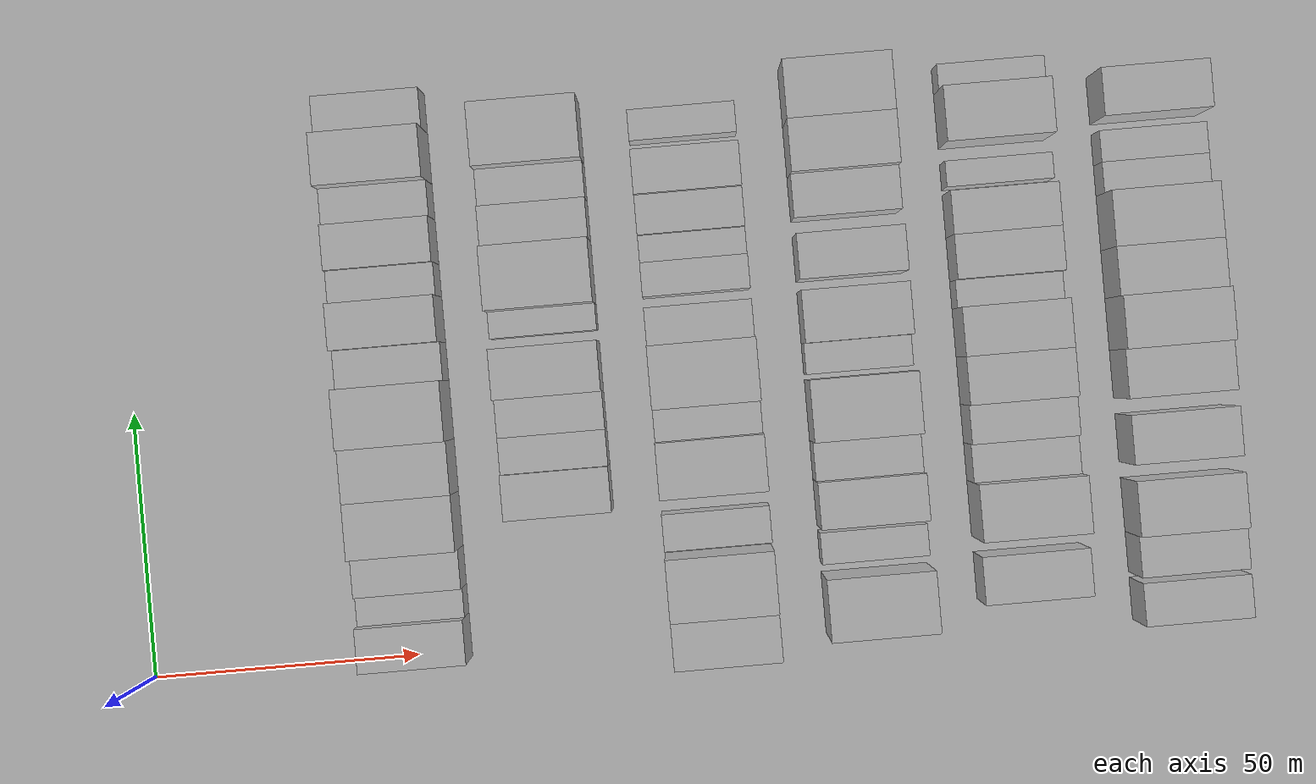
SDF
<sdf version="1.6">
 <world name="default">
  <include><name>ground_plane_1</name><uri>model://HANNAS_ground_plane</uri></include>
  <include>
   <name>ground_plane_2</name>
   <uri>model://HANNAS_ground_plane</uri>
   <pose>100 0 0  0 0 0</pose>
  </include>
  <model name="building_63">
   <static>1</static>
   <pose>50.0000 3.0512 0 0.000000 0.000000 0.000000</pose>
   <link name="link">
    <pose>0 0 9.00 0 0 0</pose>
    <collision name="collision"><geometry><box><size>20.0000 8.2839 18.0000</size></box></geometry></collision>
    <visual name="visual">
     <cast_shadows>0</cast_shadows>
     <geometry><box><size>20.0000 8.2839 18.0000</size></box></geometry>
     <material>
      <script>
       <uri>model://HANNAS_wall/materials/scripts</uri>
       <uri>model://HANNAS_wall/materials/textures</uri>
       <name>vrc/HANNAS_wall</name>
      </script>
     </material>
    </visual>
   </link>
  </model>
  <model name="building_64">
   <static>1</static>
   <pose>50.0000 9.9308 0 0.000000 0.000000 0.000000</pose>
   <link name="link">
    <pose>0 0 6.00 0 0 0</pose>
    <collision name="collision"><geometry><box><size>20.0000 5.4755 12.0000</size></box></geometry></collision>
    <visual name="visual">
     <cast_shadows>0</cast_shadows>
     <geometry><box><size>20.0000 5.4755 12.0000</size></box></geometry>
     <material>
      <script>
       <uri>model://HANNAS_wall/materials/scripts</uri>
       <uri>model://HANNAS_wall/materials/textures</uri>
       <name>vrc/HANNAS_wall</name>
      </script>
     </material>
    </visual>
   </link>
  </model>
  <model name="building_65">
   <static>1</static>
   <pose>50.0000 16.3078 0 0.000000 0.000000 0.000000</pose>
   <link name="link">
    <pose>0 0 7.50 0 0 0</pose>
    <collision name="collision"><geometry><box><size>20.0000 7.2783 15.0000</size></box></geometry></collision>
    <visual name="visual">
     <cast_shadows>0</cast_shadows>
     <geometry><box><size>20.0000 7.2783 15.0000</size></box></geometry>
     <material>
      <script>
       <uri>model://HANNAS_wall/materials/scripts</uri>
       <uri>model://HANNAS_wall/materials/textures</uri>
       <name>vrc/HANNAS_wall</name>
      </script>
     </material>
    </visual>
   </link>
  </model>
  <model name="building_66">
   <static>1</static>
   <pose>50.0000 25.1313 0 0.000000 0.000000 0.000000</pose>
   <link name="link">
    <pose>0 0 10.50 0 0 0</pose>
    <collision name="collision"><geometry><box><size>20.0000 10.3688 21.0000</size></box></geometry></collision>
    <visual name="visual">
     <cast_shadows>0</cast_shadows>
     <geometry><box><size>20.0000 10.3688 21.0000</size></box></geometry>
     <material>
      <script>
       <uri>model://HANNAS_wall/materials/scripts</uri>
       <uri>model://HANNAS_wall/materials/textures</uri>
       <name>vrc/HANNAS_wall</name>
      </script>
     </material>
    </visual>
   </link>
  </model>
  <model name="building_67">
   <static>1</static>
   <pose>50.0000 35.2658 0 0.000000 0.000000 0.000000</pose>
   <link name="link">
    <pose>0 0 10.50 0 0 0</pose>
    <collision name="collision"><geometry><box><size>20.0000 9.9002 21.0000</size></box></geometry></collision>
    <visual name="visual">
     <cast_shadows>0</cast_shadows>
     <geometry><box><size>20.0000 9.9002 21.0000</size></box></geometry>
     <material>
      <script>
       <uri>model://HANNAS_wall/materials/scripts</uri>
       <uri>model://HANNAS_wall/materials/textures</uri>
       <name>vrc/HANNAS_wall</name>
      </script>
     </material>
    </visual>
   </link>
  </model>
  <model name="building_68">
   <static>1</static>
   <pose>50.0000 45.7797 0 0.000000 0.000000 0.000000</pose>
   <link name="link">
    <pose>0 0 12.00 0 0 0</pose>
    <collision name="collision"><geometry><box><size>20.0000 11.1277 24.0000</size></box></geometry></collision>
    <visual name="visual">
     <cast_shadows>0</cast_shadows>
     <geometry><box><size>20.0000 11.1277 24.0000</size></box></geometry>
     <material>
      <script>
       <uri>model://HANNAS_wall/materials/scripts</uri>
       <uri>model://HANNAS_wall/materials/textures</uri>
       <name>vrc/HANNAS_wall</name>
      </script>
     </material>
    </visual>
   </link>
  </model>
  <model name="building_69">
   <static>1</static>
   <pose>50.0000 54.9168 0 0.000000 0.000000 0.000000</pose>
   <link name="link">
    <pose>0 0 7.50 0 0 0</pose>
    <collision name="collision"><geometry><box><size>20.0000 7.1465 15.0000</size></box></geometry></collision>
    <visual name="visual">
     <cast_shadows>0</cast_shadows>
     <geometry><box><size>20.0000 7.1465 15.0000</size></box></geometry>
     <material>
      <script>
       <uri>model://HANNAS_wall/materials/scripts</uri>
       <uri>model://HANNAS_wall/materials/textures</uri>
       <name>vrc/HANNAS_wall</name>
      </script>
     </material>
    </visual>
   </link>
  </model>
  <model name="building_70">
   <static>1</static>
   <pose>50.0000 62.8040 0 0.000000 0.000000 0.000000</pose>
   <link name="link">
    <pose>0 0 10.50 0 0 0</pose>
    <collision name="collision"><geometry><box><size>20.0000 8.6278 21.0000</size></box></geometry></collision>
    <visual name="visual">
     <cast_shadows>0</cast_shadows>
     <geometry><box><size>20.0000 8.6278 21.0000</size></box></geometry>
     <material>
      <script>
       <uri>model://HANNAS_wall/materials/scripts</uri>
       <uri>model://HANNAS_wall/materials/textures</uri>
       <name>vrc/HANNAS_wall</name>
      </script>
     </material>
    </visual>
   </link>
  </model>
  <model name="building_71">
   <static>1</static>
   <pose>50.0000 70.1985 0 0.000000 0.000000 0.000000</pose>
   <link name="link">
    <pose>0 0 7.50 0 0 0</pose>
    <collision name="collision"><geometry><box><size>20.0000 6.1613 15.0000</size></box></geometry></collision>
    <visual name="visual">
     <cast_shadows>0</cast_shadows>
     <geometry><box><size>20.0000 6.1613 15.0000</size></box></geometry>
     <material>
      <script>
       <uri>model://HANNAS_wall/materials/scripts</uri>
       <uri>model://HANNAS_wall/materials/textures</uri>
       <name>vrc/HANNAS_wall</name>
      </script>
     </material>
    </visual>
   </link>
  </model>
  <model name="building_72">
   <static>1</static>
   <pose>50.0000 77.4950 0 0.000000 0.000000 0.000000</pose>
   <link name="link">
    <pose>0 0 9.00 0 0 0</pose>
    <collision name="collision"><geometry><box><size>20.0000 8.4317 18.0000</size></box></geometry></collision>
    <visual name="visual">
     <cast_shadows>0</cast_shadows>
     <geometry><box><size>20.0000 8.4317 18.0000</size></box></geometry>
     <material>
      <script>
       <uri>model://HANNAS_wall/materials/scripts</uri>
       <uri>model://HANNAS_wall/materials/textures</uri>
       <name>vrc/HANNAS_wall</name>
      </script>
     </material>
    </visual>
   </link>
  </model>
  <model name="building_73">
   <static>1</static>
   <pose>50.0000 85.1063 0 0.000000 0.000000 0.000000</pose>
   <link name="link">
    <pose>0 0 7.50 0 0 0</pose>
    <collision name="collision"><geometry><box><size>20.0000 6.7908 15.0000</size></box></geometry></collision>
    <visual name="visual">
     <cast_shadows>0</cast_shadows>
     <geometry><box><size>20.0000 6.7908 15.0000</size></box></geometry>
     <material>
      <script>
       <uri>model://HANNAS_wall/materials/scripts</uri>
       <uri>model://HANNAS_wall/materials/textures</uri>
       <name>vrc/HANNAS_wall</name>
      </script>
     </material>
    </visual>
   </link>
  </model>
  <model name="building_74">
   <static>1</static>
   <pose>50.0000 93.3463 0 0.000000 0.000000 0.000000</pose>
   <link name="link">
    <pose>0 0 12.00 0 0 0</pose>
    <collision name="collision"><geometry><box><size>20.0000 9.6893 24.0000</size></box></geometry></collision>
    <visual name="visual">
     <cast_shadows>0</cast_shadows>
     <geometry><box><size>20.0000 9.6893 24.0000</size></box></geometry>
     <material>
      <script>
       <uri>model://HANNAS_wall/materials/scripts</uri>
       <uri>model://HANNAS_wall/materials/textures</uri>
       <name>vrc/HANNAS_wall</name>
      </script>
     </material>
    </visual>
   </link>
  </model>
  <model name="building_75">
   <static>1</static>
   <pose>50.0000 101.9193 0 0.000000 0.000000 0.000000</pose>
   <link name="link">
    <pose>0 0 7.50 0 0 0</pose>
    <collision name="collision"><geometry><box><size>20.0000 7.4566 15.0000</size></box></geometry></collision>
    <visual name="visual">
     <cast_shadows>0</cast_shadows>
     <geometry><box><size>20.0000 7.4566 15.0000</size></box></geometry>
     <material>
      <script>
       <uri>model://HANNAS_wall/materials/scripts</uri>
       <uri>model://HANNAS_wall/materials/textures</uri>
       <name>vrc/HANNAS_wall</name>
      </script>
     </material>
    </visual>
   </link>
  </model>
  <model name="building_181">
   <static>1</static>
   <pose>79.0000 28.7754 0 0.000000 0.000000 0.000000</pose>
   <link name="link">
    <pose>0 0 9.00 0 0 0</pose>
    <collision name="collision"><geometry><box><size>20.0000 8.4628 18.0000</size></box></geometry></collision>
    <visual name="visual">
     <cast_shadows>0</cast_shadows>
     <geometry><box><size>20.0000 8.4628 18.0000</size></box></geometry>
     <material>
      <script>
       <uri>model://HANNAS_wall/materials/scripts</uri>
       <uri>model://HANNAS_wall/materials/textures</uri>
       <name>vrc/HANNAS_wall</name>
      </script>
     </material>
    </visual>
   </link>
  </model>
  <model name="building_182">
   <static>1</static>
   <pose>79.0000 36.4030 0 0.000000 0.000000 0.000000</pose>
   <link name="link">
    <pose>0 0 7.50 0 0 0</pose>
    <collision name="collision"><geometry><box><size>20.0000 6.7922 15.0000</size></box></geometry></collision>
    <visual name="visual">
     <cast_shadows>0</cast_shadows>
     <geometry><box><size>20.0000 6.7922 15.0000</size></box></geometry>
     <material>
      <script>
       <uri>model://HANNAS_wall/materials/scripts</uri>
       <uri>model://HANNAS_wall/materials/textures</uri>
       <name>vrc/HANNAS_wall</name>
      </script>
     </material>
    </visual>
   </link>
  </model>
  <model name="building_183">
   <static>1</static>
   <pose>79.0000 43.3364 0 0.000000 0.000000 0.000000</pose>
   <link name="link">
    <pose>0 0 7.50 0 0 0</pose>
    <collision name="collision"><geometry><box><size>20.0000 7.0746 15.0000</size></box></geometry></collision>
    <visual name="visual">
     <cast_shadows>0</cast_shadows>
     <geometry><box><size>20.0000 7.0746 15.0000</size></box></geometry>
     <material>
      <script>
       <uri>model://HANNAS_wall/materials/scripts</uri>
       <uri>model://HANNAS_wall/materials/textures</uri>
       <name>vrc/HANNAS_wall</name>
      </script>
     </material>
    </visual>
   </link>
  </model>
  <model name="building_184">
   <static>1</static>
   <pose>79.0000 51.5589 0 0.000000 0.000000 0.000000</pose>
   <link name="link">
    <pose>0 0 10.50 0 0 0</pose>
    <collision name="collision"><geometry><box><size>20.0000 9.3705 21.0000</size></box></geometry></collision>
    <visual name="visual">
     <cast_shadows>0</cast_shadows>
     <geometry><box><size>20.0000 9.3705 21.0000</size></box></geometry>
     <material>
      <script>
       <uri>model://HANNAS_wall/materials/scripts</uri>
       <uri>model://HANNAS_wall/materials/textures</uri>
       <name>vrc/HANNAS_wall</name>
      </script>
     </material>
    </visual>
   </link>
  </model>
  <model name="building_185">
   <static>1</static>
   <pose>79.0000 60.7445 0 0.000000 0.000000 0.000000</pose>
   <link name="link">
    <pose>0 0 6.00 0 0 0</pose>
    <collision name="collision"><geometry><box><size>20.0000 5.0007 12.0000</size></box></geometry></collision>
    <visual name="visual">
     <cast_shadows>0</cast_shadows>
     <geometry><box><size>20.0000 5.0007 12.0000</size></box></geometry>
     <material>
      <script>
       <uri>model://HANNAS_wall/materials/scripts</uri>
       <uri>model://HANNAS_wall/materials/textures</uri>
       <name>vrc/HANNAS_wall</name>
      </script>
     </material>
    </visual>
   </link>
  </model>
  <model name="building_186">
   <static>1</static>
   <pose>79.0000 69.1497 0 0.000000 0.000000 0.000000</pose>
   <link name="link">
    <pose>0 0 12.00 0 0 0</pose>
    <collision name="collision"><geometry><box><size>20.0000 11.8096 24.0000</size></box></geometry></collision>
    <visual name="visual">
     <cast_shadows>0</cast_shadows>
     <geometry><box><size>20.0000 11.8096 24.0000</size></box></geometry>
     <material>
      <script>
       <uri>model://HANNAS_wall/materials/scripts</uri>
       <uri>model://HANNAS_wall/materials/textures</uri>
       <name>vrc/HANNAS_wall</name>
      </script>
     </material>
    </visual>
   </link>
  </model>
  <model name="building_187">
   <static>1</static>
   <pose>79.0000 78.8538 0 0.000000 0.000000 0.000000</pose>
   <link name="link">
    <pose>0 0 9.00 0 0 0</pose>
    <collision name="collision"><geometry><box><size>20.0000 7.5987 18.0000</size></box></geometry></collision>
    <visual name="visual">
     <cast_shadows>0</cast_shadows>
     <geometry><box><size>20.0000 7.5987 18.0000</size></box></geometry>
     <material>
      <script>
       <uri>model://HANNAS_wall/materials/scripts</uri>
       <uri>model://HANNAS_wall/materials/textures</uri>
       <name>vrc/HANNAS_wall</name>
      </script>
     </material>
    </visual>
   </link>
  </model>
  <model name="building_188">
   <static>1</static>
   <pose>79.0000 86.1236 0 0.000000 0.000000 0.000000</pose>
   <link name="link">
    <pose>0 0 7.50 0 0 0</pose>
    <collision name="collision"><geometry><box><size>20.0000 6.9408 15.0000</size></box></geometry></collision>
    <visual name="visual">
     <cast_shadows>0</cast_shadows>
     <geometry><box><size>20.0000 6.9408 15.0000</size></box></geometry>
     <material>
      <script>
       <uri>model://HANNAS_wall/materials/scripts</uri>
       <uri>model://HANNAS_wall/materials/textures</uri>
       <name>vrc/HANNAS_wall</name>
      </script>
     </material>
    </visual>
   </link>
  </model>
  <model name="building_189">
   <static>1</static>
   <pose>79.0000 95.4461 0 0.000000 0.000000 0.000000</pose>
   <link name="link">
    <pose>0 0 12.00 0 0 0</pose>
    <collision name="collision"><geometry><box><size>20.0000 11.7041 24.0000</size></box></geometry></collision>
    <visual name="visual">
     <cast_shadows>0</cast_shadows>
     <geometry><box><size>20.0000 11.7041 24.0000</size></box></geometry>
     <material>
      <script>
       <uri>model://HANNAS_wall/materials/scripts</uri>
       <uri>model://HANNAS_wall/materials/textures</uri>
       <name>vrc/HANNAS_wall</name>
      </script>
     </material>
    </visual>
   </link>
  </model>
  <model name="building_288">
   <static>1</static>
   <pose>108.0000 -0.8430 0 0.000000 0.000000 0.000000</pose>
   <link name="link">
    <pose>0 0 10.50 0 0 0</pose>
    <collision name="collision"><geometry><box><size>20.0000 8.9675 21.0000</size></box></geometry></collision>
    <visual name="visual">
     <cast_shadows>0</cast_shadows>
     <geometry><box><size>20.0000 8.9675 21.0000</size></box></geometry>
     <material>
      <script>
       <uri>model://HANNAS_wall/materials/scripts</uri>
       <uri>model://HANNAS_wall/materials/textures</uri>
       <name>vrc/HANNAS_wall</name>
      </script>
     </material>
    </visual>
   </link>
  </model>
  <model name="building_289">
   <static>1</static>
   <pose>108.0000 9.4545 0 0.000000 0.000000 0.000000</pose>
   <link name="link">
    <pose>0 0 12.00 0 0 0</pose>
    <collision name="collision"><geometry><box><size>20.0000 11.6276 24.0000</size></box></geometry></collision>
    <visual name="visual">
     <cast_shadows>0</cast_shadows>
     <geometry><box><size>20.0000 11.6276 24.0000</size></box></geometry>
     <material>
      <script>
       <uri>model://HANNAS_wall/materials/scripts</uri>
       <uri>model://HANNAS_wall/materials/textures</uri>
       <name>vrc/HANNAS_wall</name>
      </script>
     </material>
    </visual>
   </link>
  </model>
  <model name="building_290">
   <static>1</static>
   <pose>108.0000 19.7019 0 0.000000 0.000000 0.000000</pose>
   <link name="link">
    <pose>0 0 7.50 0 0 0</pose>
    <collision name="collision"><geometry><box><size>20.0000 6.8671 15.0000</size></box></geometry></collision>
    <visual name="visual">
     <cast_shadows>0</cast_shadows>
     <geometry><box><size>20.0000 6.8671 15.0000</size></box></geometry>
     <material>
      <script>
       <uri>model://HANNAS_wall/materials/scripts</uri>
       <uri>model://HANNAS_wall/materials/textures</uri>
       <name>vrc/HANNAS_wall</name>
      </script>
     </material>
    </visual>
   </link>
  </model>
  <model name="building_291">
   <static>1</static>
   <pose>108.0000 31.3519 0 0.000000 0.000000 0.000000</pose>
   <link name="link">
    <pose>0 0 12.00 0 0 0</pose>
    <collision name="collision"><geometry><box><size>20.0000 10.4329 24.0000</size></box></geometry></collision>
    <visual name="visual">
     <cast_shadows>0</cast_shadows>
     <geometry><box><size>20.0000 10.4329 24.0000</size></box></geometry>
     <material>
      <script>
       <uri>model://HANNAS_wall/materials/scripts</uri>
       <uri>model://HANNAS_wall/materials/textures</uri>
       <name>vrc/HANNAS_wall</name>
      </script>
     </material>
    </visual>
   </link>
  </model>
  <model name="building_292">
   <static>1</static>
   <pose>108.0000 39.5927 0 0.000000 0.000000 0.000000</pose>
   <link name="link">
    <pose>0 0 7.50 0 0 0</pose>
    <collision name="collision"><geometry><box><size>20.0000 6.0488 15.0000</size></box></geometry></collision>
    <visual name="visual">
     <cast_shadows>0</cast_shadows>
     <geometry><box><size>20.0000 6.0488 15.0000</size></box></geometry>
     <material>
      <script>
       <uri>model://HANNAS_wall/materials/scripts</uri>
       <uri>model://HANNAS_wall/materials/textures</uri>
       <name>vrc/HANNAS_wall</name>
      </script>
     </material>
    </visual>
   </link>
  </model>
  <model name="building_293">
   <static>1</static>
   <pose>108.0000 48.4767 0 0.000000 0.000000 0.000000</pose>
   <link name="link">
    <pose>0 0 12.00 0 0 0</pose>
    <collision name="collision"><geometry><box><size>20.0000 11.7192 24.0000</size></box></geometry></collision>
    <visual name="visual">
     <cast_shadows>0</cast_shadows>
     <geometry><box><size>20.0000 11.7192 24.0000</size></box></geometry>
     <material>
      <script>
       <uri>model://HANNAS_wall/materials/scripts</uri>
       <uri>model://HANNAS_wall/materials/textures</uri>
       <name>vrc/HANNAS_wall</name>
      </script>
     </material>
    </visual>
   </link>
  </model>
  <model name="building_294">
   <static>1</static>
   <pose>108.0000 57.9008 0 0.000000 0.000000 0.000000</pose>
   <link name="link">
    <pose>0 0 7.50 0 0 0</pose>
    <collision name="collision"><geometry><box><size>20.0000 7.1291 15.0000</size></box></geometry></collision>
    <visual name="visual">
     <cast_shadows>0</cast_shadows>
     <geometry><box><size>20.0000 7.1291 15.0000</size></box></geometry>
     <material>
      <script>
       <uri>model://HANNAS_wall/materials/scripts</uri>
       <uri>model://HANNAS_wall/materials/textures</uri>
       <name>vrc/HANNAS_wall</name>
      </script>
     </material>
    </visual>
   </link>
  </model>
  <model name="building_295">
   <static>1</static>
   <pose>108.0000 66.6432 0 0.000000 0.000000 0.000000</pose>
   <link name="link">
    <pose>0 0 7.50 0 0 0</pose>
    <collision name="collision"><geometry><box><size>20.0000 6.3557 15.0000</size></box></geometry></collision>
    <visual name="visual">
     <cast_shadows>0</cast_shadows>
     <geometry><box><size>20.0000 6.3557 15.0000</size></box></geometry>
     <material>
      <script>
       <uri>model://HANNAS_wall/materials/scripts</uri>
       <uri>model://HANNAS_wall/materials/textures</uri>
       <name>vrc/HANNAS_wall</name>
      </script>
     </material>
    </visual>
   </link>
  </model>
  <model name="building_296">
   <static>1</static>
   <pose>108.0000 72.3871 0 0.000000 0.000000 0.000000</pose>
   <link name="link">
    <pose>0 0 6.00 0 0 0</pose>
    <collision name="collision"><geometry><box><size>20.0000 5.1322 12.0000</size></box></geometry></collision>
    <visual name="visual">
     <cast_shadows>0</cast_shadows>
     <geometry><box><size>20.0000 5.1322 12.0000</size></box></geometry>
     <material>
      <script>
       <uri>model://HANNAS_wall/materials/scripts</uri>
       <uri>model://HANNAS_wall/materials/textures</uri>
       <name>vrc/HANNAS_wall</name>
      </script>
     </material>
    </visual>
   </link>
  </model>
  <model name="building_297">
   <static>1</static>
   <pose>108.0000 78.6445 0 0.000000 0.000000 0.000000</pose>
   <link name="link">
    <pose>0 0 7.50 0 0 0</pose>
    <collision name="collision"><geometry><box><size>20.0000 7.3824 15.0000</size></box></geometry></collision>
    <visual name="visual">
     <cast_shadows>0</cast_shadows>
     <geometry><box><size>20.0000 7.3824 15.0000</size></box></geometry>
     <material>
      <script>
       <uri>model://HANNAS_wall/materials/scripts</uri>
       <uri>model://HANNAS_wall/materials/textures</uri>
       <name>vrc/HANNAS_wall</name>
      </script>
     </material>
    </visual>
   </link>
  </model>
  <model name="building_298">
   <static>1</static>
   <pose>108.0000 86.4740 0 0.000000 0.000000 0.000000</pose>
   <link name="link">
    <pose>0 0 9.00 0 0 0</pose>
    <collision name="collision"><geometry><box><size>20.0000 8.2768 18.0000</size></box></geometry></collision>
    <visual name="visual">
     <cast_shadows>0</cast_shadows>
     <geometry><box><size>20.0000 8.2768 18.0000</size></box></geometry>
     <material>
      <script>
       <uri>model://HANNAS_wall/materials/scripts</uri>
       <uri>model://HANNAS_wall/materials/textures</uri>
       <name>vrc/HANNAS_wall</name>
      </script>
     </material>
    </visual>
   </link>
  </model>
  <model name="building_299">
   <static>1</static>
   <pose>108.0000 95.5050 0 0.000000 0.000000 0.000000</pose>
   <link name="link">
    <pose>0 0 6.00 0 0 0</pose>
    <collision name="collision"><geometry><box><size>20.0000 5.7852 12.0000</size></box></geometry></collision>
    <visual name="visual">
     <cast_shadows>0</cast_shadows>
     <geometry><box><size>20.0000 5.7852 12.0000</size></box></geometry>
     <material>
      <script>
       <uri>model://HANNAS_wall/materials/scripts</uri>
       <uri>model://HANNAS_wall/materials/textures</uri>
       <name>vrc/HANNAS_wall</name>
      </script>
     </material>
    </visual>
   </link>
  </model>
  <model name="building_399">
   <static>1</static>
   <pose>137.0000 3.4498 0 0.000000 0.000000 0.000000</pose>
   <link name="link">
    <pose>0 0 12.00 0 0 0</pose>
    <collision name="collision"><geometry><box><size>20.0000 11.4949 24.0000</size></box></geometry></collision>
    <visual name="visual">
     <cast_shadows>0</cast_shadows>
     <geometry><box><size>20.0000 11.4949 24.0000</size></box></geometry>
     <material>
      <script>
       <uri>model://HANNAS_wall/materials/scripts</uri>
       <uri>model://HANNAS_wall/materials/textures</uri>
       <name>vrc/HANNAS_wall</name>
      </script>
     </material>
    </visual>
   </link>
  </model>
  <model name="building_400">
   <static>1</static>
   <pose>137.0000 14.1536 0 0.000000 0.000000 0.000000</pose>
   <link name="link">
    <pose>0 0 6.00 0 0 0</pose>
    <collision name="collision"><geometry><box><size>20.0000 5.9125 12.0000</size></box></geometry></collision>
    <visual name="visual">
     <cast_shadows>0</cast_shadows>
     <geometry><box><size>20.0000 5.9125 12.0000</size></box></geometry>
     <material>
      <script>
       <uri>model://HANNAS_wall/materials/scripts</uri>
       <uri>model://HANNAS_wall/materials/textures</uri>
       <name>vrc/HANNAS_wall</name>
      </script>
     </material>
    </visual>
   </link>
  </model>
  <model name="building_401">
   <static>1</static>
   <pose>137.0000 22.4602 0 0.000000 0.000000 0.000000</pose>
   <link name="link">
    <pose>0 0 10.50 0 0 0</pose>
    <collision name="collision"><geometry><box><size>20.0000 8.7008 21.0000</size></box></geometry></collision>
    <visual name="visual">
     <cast_shadows>0</cast_shadows>
     <geometry><box><size>20.0000 8.7008 21.0000</size></box></geometry>
     <material>
      <script>
       <uri>model://HANNAS_wall/materials/scripts</uri>
       <uri>model://HANNAS_wall/materials/textures</uri>
       <name>vrc/HANNAS_wall</name>
      </script>
     </material>
    </visual>
   </link>
  </model>
  <model name="building_402">
   <static>1</static>
   <pose>137.0000 30.4745 0 0.000000 0.000000 0.000000</pose>
   <link name="link">
    <pose>0 0 7.50 0 0 0</pose>
    <collision name="collision"><geometry><box><size>20.0000 7.3277 15.0000</size></box></geometry></collision>
    <visual name="visual">
     <cast_shadows>0</cast_shadows>
     <geometry><box><size>20.0000 7.3277 15.0000</size></box></geometry>
     <material>
      <script>
       <uri>model://HANNAS_wall/materials/scripts</uri>
       <uri>model://HANNAS_wall/materials/textures</uri>
       <name>vrc/HANNAS_wall</name>
      </script>
     </material>
    </visual>
   </link>
  </model>
  <model name="building_403">
   <static>1</static>
   <pose>137.0000 39.8724 0 0.000000 0.000000 0.000000</pose>
   <link name="link">
    <pose>0 0 12.00 0 0 0</pose>
    <collision name="collision"><geometry><box><size>20.0000 11.4682 24.0000</size></box></geometry></collision>
    <visual name="visual">
     <cast_shadows>0</cast_shadows>
     <geometry><box><size>20.0000 11.4682 24.0000</size></box></geometry>
     <material>
      <script>
       <uri>model://HANNAS_wall/materials/scripts</uri>
       <uri>model://HANNAS_wall/materials/textures</uri>
       <name>vrc/HANNAS_wall</name>
      </script>
     </material>
    </visual>
   </link>
  </model>
  <model name="building_404">
   <static>1</static>
   <pose>137.0000 49.4898 0 0.000000 0.000000 0.000000</pose>
   <link name="link">
    <pose>0 0 6.00 0 0 0</pose>
    <collision name="collision"><geometry><box><size>20.0000 5.7666 12.0000</size></box></geometry></collision>
    <visual name="visual">
     <cast_shadows>0</cast_shadows>
     <geometry><box><size>20.0000 5.7666 12.0000</size></box></geometry>
     <material>
      <script>
       <uri>model://HANNAS_wall/materials/scripts</uri>
       <uri>model://HANNAS_wall/materials/textures</uri>
       <name>vrc/HANNAS_wall</name>
      </script>
     </material>
    </visual>
   </link>
  </model>
  <model name="building_405">
   <static>1</static>
   <pose>137.0000 57.2198 0 0.000000 0.000000 0.000000</pose>
   <link name="link">
    <pose>0 0 10.50 0 0 0</pose>
    <collision name="collision"><geometry><box><size>20.0000 9.6932 21.0000</size></box></geometry></collision>
    <visual name="visual">
     <cast_shadows>0</cast_shadows>
     <geometry><box><size>20.0000 9.6932 21.0000</size></box></geometry>
     <material>
      <script>
       <uri>model://HANNAS_wall/materials/scripts</uri>
       <uri>model://HANNAS_wall/materials/textures</uri>
       <name>vrc/HANNAS_wall</name>
      </script>
     </material>
    </visual>
   </link>
  </model>
  <model name="building_406">
   <static>1</static>
   <pose>137.0000 68.2694 0 0.000000 0.000000 0.000000</pose>
   <link name="link">
    <pose>0 0 10.50 0 0 0</pose>
    <collision name="collision"><geometry><box><size>20.0000 8.4061 21.0000</size></box></geometry></collision>
    <visual name="visual">
     <cast_shadows>0</cast_shadows>
     <geometry><box><size>20.0000 8.4061 21.0000</size></box></geometry>
     <material>
      <script>
       <uri>model://HANNAS_wall/materials/scripts</uri>
       <uri>model://HANNAS_wall/materials/textures</uri>
       <name>vrc/HANNAS_wall</name>
      </script>
     </material>
    </visual>
   </link>
  </model>
  <model name="building_407">
   <static>1</static>
   <pose>137.0000 79.5153 0 0.000000 0.000000 0.000000</pose>
   <link name="link">
    <pose>0 0 9.00 0 0 0</pose>
    <collision name="collision"><geometry><box><size>20.0000 8.0856 18.0000</size></box></geometry></collision>
    <visual name="visual">
     <cast_shadows>0</cast_shadows>
     <geometry><box><size>20.0000 8.0856 18.0000</size></box></geometry>
     <material>
      <script>
       <uri>model://HANNAS_wall/materials/scripts</uri>
       <uri>model://HANNAS_wall/materials/textures</uri>
       <name>vrc/HANNAS_wall</name>
      </script>
     </material>
    </visual>
   </link>
  </model>
  <model name="building_408">
   <static>1</static>
   <pose>137.0000 88.4179 0 0.000000 0.000000 0.000000</pose>
   <link name="link">
    <pose>0 0 12.00 0 0 0</pose>
    <collision name="collision"><geometry><box><size>20.0000 9.7195 24.0000</size></box></geometry></collision>
    <visual name="visual">
     <cast_shadows>0</cast_shadows>
     <geometry><box><size>20.0000 9.7195 24.0000</size></box></geometry>
     <material>
      <script>
       <uri>model://HANNAS_wall/materials/scripts</uri>
       <uri>model://HANNAS_wall/materials/textures</uri>
       <name>vrc/HANNAS_wall</name>
      </script>
     </material>
    </visual>
   </link>
  </model>
  <model name="building_409">
   <static>1</static>
   <pose>137.0000 98.6903 0 0.000000 0.000000 0.000000</pose>
   <link name="link">
    <pose>0 0 12.00 0 0 0</pose>
    <collision name="collision"><geometry><box><size>20.0000 10.8255 24.0000</size></box></geometry></collision>
    <visual name="visual">
     <cast_shadows>0</cast_shadows>
     <geometry><box><size>20.0000 10.8255 24.0000</size></box></geometry>
     <material>
      <script>
       <uri>model://HANNAS_wall/materials/scripts</uri>
       <uri>model://HANNAS_wall/materials/textures</uri>
       <name>vrc/HANNAS_wall</name>
      </script>
     </material>
    </visual>
   </link>
  </model>
  <model name="building_515">
   <static>1</static>
   <pose>166.0000 6.0064 0 0.000000 0.000000 0.000000</pose>
   <link name="link">
    <pose>0 0 9.00 0 0 0</pose>
    <collision name="collision"><geometry><box><size>20.0000 8.9045 18.0000</size></box></geometry></collision>
    <visual name="visual">
     <cast_shadows>0</cast_shadows>
     <geometry><box><size>20.0000 8.9045 18.0000</size></box></geometry>
     <material>
      <script>
       <uri>model://HANNAS_wall/materials/scripts</uri>
       <uri>model://HANNAS_wall/materials/textures</uri>
       <name>vrc/HANNAS_wall</name>
      </script>
     </material>
    </visual>
   </link>
  </model>
  <model name="building_516">
   <static>1</static>
   <pose>166.0000 18.7355 0 0.000000 0.000000 0.000000</pose>
   <link name="link">
    <pose>0 0 12.00 0 0 0</pose>
    <collision name="collision"><geometry><box><size>20.0000 10.5537 24.0000</size></box></geometry></collision>
    <visual name="visual">
     <cast_shadows>0</cast_shadows>
     <geometry><box><size>20.0000 10.5537 24.0000</size></box></geometry>
     <material>
      <script>
       <uri>model://HANNAS_wall/materials/scripts</uri>
       <uri>model://HANNAS_wall/materials/textures</uri>
       <name>vrc/HANNAS_wall</name>
      </script>
     </material>
    </visual>
   </link>
  </model>
  <model name="building_517">
   <static>1</static>
   <pose>166.0000 27.5955 0 0.000000 0.000000 0.000000</pose>
   <link name="link">
    <pose>0 0 7.50 0 0 0</pose>
    <collision name="collision"><geometry><box><size>20.0000 7.1661 15.0000</size></box></geometry></collision>
    <visual name="visual">
     <cast_shadows>0</cast_shadows>
     <geometry><box><size>20.0000 7.1661 15.0000</size></box></geometry>
     <material>
      <script>
       <uri>model://HANNAS_wall/materials/scripts</uri>
       <uri>model://HANNAS_wall/materials/textures</uri>
       <name>vrc/HANNAS_wall</name>
      </script>
     </material>
    </visual>
   </link>
  </model>
  <model name="building_518">
   <static>1</static>
   <pose>166.0000 34.8123 0 0.000000 0.000000 0.000000</pose>
   <link name="link">
    <pose>0 0 9.00 0 0 0</pose>
    <collision name="collision"><geometry><box><size>20.0000 7.2675 18.0000</size></box></geometry></collision>
    <visual name="visual">
     <cast_shadows>0</cast_shadows>
     <geometry><box><size>20.0000 7.2675 18.0000</size></box></geometry>
     <material>
      <script>
       <uri>model://HANNAS_wall/materials/scripts</uri>
       <uri>model://HANNAS_wall/materials/textures</uri>
       <name>vrc/HANNAS_wall</name>
      </script>
     </material>
    </visual>
   </link>
  </model>
  <model name="building_519">
   <static>1</static>
   <pose>166.0000 42.9169 0 0.000000 0.000000 0.000000</pose>
   <link name="link">
    <pose>0 0 10.50 0 0 0</pose>
    <collision name="collision"><geometry><box><size>20.0000 8.9419 21.0000</size></box></geometry></collision>
    <visual name="visual">
     <cast_shadows>0</cast_shadows>
     <geometry><box><size>20.0000 8.9419 21.0000</size></box></geometry>
     <material>
      <script>
       <uri>model://HANNAS_wall/materials/scripts</uri>
       <uri>model://HANNAS_wall/materials/textures</uri>
       <name>vrc/HANNAS_wall</name>
      </script>
     </material>
    </visual>
   </link>
  </model>
  <model name="building_520">
   <static>1</static>
   <pose>166.0000 51.9283 0 0.000000 0.000000 0.000000</pose>
   <link name="link">
    <pose>0 0 10.50 0 0 0</pose>
    <collision name="collision"><geometry><box><size>20.0000 9.0809 21.0000</size></box></geometry></collision>
    <visual name="visual">
     <cast_shadows>0</cast_shadows>
     <geometry><box><size>20.0000 9.0809 21.0000</size></box></geometry>
     <material>
      <script>
       <uri>model://HANNAS_wall/materials/scripts</uri>
       <uri>model://HANNAS_wall/materials/textures</uri>
       <name>vrc/HANNAS_wall</name>
      </script>
     </material>
    </visual>
   </link>
  </model>
  <model name="building_521">
   <static>1</static>
   <pose>166.0000 59.0639 0 0.000000 0.000000 0.000000</pose>
   <link name="link">
    <pose>0 0 6.00 0 0 0</pose>
    <collision name="collision"><geometry><box><size>20.0000 5.1903 12.0000</size></box></geometry></collision>
    <visual name="visual">
     <cast_shadows>0</cast_shadows>
     <geometry><box><size>20.0000 5.1903 12.0000</size></box></geometry>
     <material>
      <script>
       <uri>model://HANNAS_wall/materials/scripts</uri>
       <uri>model://HANNAS_wall/materials/textures</uri>
       <name>vrc/HANNAS_wall</name>
      </script>
     </material>
    </visual>
   </link>
  </model>
  <model name="building_522">
   <static>1</static>
   <pose>166.0000 65.7836 0 0.000000 0.000000 0.000000</pose>
   <link name="link">
    <pose>0 0 9.00 0 0 0</pose>
    <collision name="collision"><geometry><box><size>20.0000 8.2490 18.0000</size></box></geometry></collision>
    <visual name="visual">
     <cast_shadows>0</cast_shadows>
     <geometry><box><size>20.0000 8.2490 18.0000</size></box></geometry>
     <material>
      <script>
       <uri>model://HANNAS_wall/materials/scripts</uri>
       <uri>model://HANNAS_wall/materials/textures</uri>
       <name>vrc/HANNAS_wall</name>
      </script>
     </material>
    </visual>
   </link>
  </model>
  <model name="building_523">
   <static>1</static>
   <pose>166.0000 73.9577 0 0.000000 0.000000 0.000000</pose>
   <link name="link">
    <pose>0 0 9.00 0 0 0</pose>
    <collision name="collision"><geometry><box><size>20.0000 8.0993 18.0000</size></box></geometry></collision>
    <visual name="visual">
     <cast_shadows>0</cast_shadows>
     <geometry><box><size>20.0000 8.0993 18.0000</size></box></geometry>
     <material>
      <script>
       <uri>model://HANNAS_wall/materials/scripts</uri>
       <uri>model://HANNAS_wall/materials/textures</uri>
       <name>vrc/HANNAS_wall</name>
      </script>
     </material>
    </visual>
   </link>
  </model>
  <model name="building_524">
   <static>1</static>
   <pose>166.0000 81.4178 0 0.000000 0.000000 0.000000</pose>
   <link name="link">
    <pose>0 0 6.00 0 0 0</pose>
    <collision name="collision"><geometry><box><size>20.0000 4.8209 12.0000</size></box></geometry></collision>
    <visual name="visual">
     <cast_shadows>0</cast_shadows>
     <geometry><box><size>20.0000 4.8209 12.0000</size></box></geometry>
     <material>
      <script>
       <uri>model://HANNAS_wall/materials/scripts</uri>
       <uri>model://HANNAS_wall/materials/textures</uri>
       <name>vrc/HANNAS_wall</name>
      </script>
     </material>
    </visual>
   </link>
  </model>
  <model name="building_525">
   <static>1</static>
   <pose>166.0000 91.9411 0 0.000000 0.000000 0.000000</pose>
   <link name="link">
    <pose>0 0 10.50 0 0 0</pose>
    <collision name="collision"><geometry><box><size>20.0000 10.2256 21.0000</size></box></geometry></collision>
    <visual name="visual">
     <cast_shadows>0</cast_shadows>
     <geometry><box><size>20.0000 10.2256 21.0000</size></box></geometry>
     <material>
      <script>
       <uri>model://HANNAS_wall/materials/scripts</uri>
       <uri>model://HANNAS_wall/materials/textures</uri>
       <name>vrc/HANNAS_wall</name>
      </script>
     </material>
    </visual>
   </link>
  </model>
  <model name="building_526">
   <static>1</static>
   <pose>166.0000 99.4540 0 0.000000 0.000000 0.000000</pose>
   <link name="link">
    <pose>0 0 6.00 0 0 0</pose>
    <collision name="collision"><geometry><box><size>20.0000 4.8002 12.0000</size></box></geometry></collision>
    <visual name="visual">
     <cast_shadows>0</cast_shadows>
     <geometry><box><size>20.0000 4.8002 12.0000</size></box></geometry>
     <material>
      <script>
       <uri>model://HANNAS_wall/materials/scripts</uri>
       <uri>model://HANNAS_wall/materials/textures</uri>
       <name>vrc/HANNAS_wall</name>
      </script>
     </material>
    </visual>
   </link>
  </model>
  <model name="building_630">
   <static>1</static>
   <pose>195.0000 -0.8644 0 0.000000 0.000000 0.000000</pose>
   <link name="link">
    <pose>0 0 9.00 0 0 0</pose>
    <collision name="collision"><geometry><box><size>20.0000 7.9895 18.0000</size></box></geometry></collision>
    <visual name="visual">
     <cast_shadows>0</cast_shadows>
     <geometry><box><size>20.0000 7.9895 18.0000</size></box></geometry>
     <material>
      <script>
       <uri>model://HANNAS_wall/materials/scripts</uri>
       <uri>model://HANNAS_wall/materials/textures</uri>
       <name>vrc/HANNAS_wall</name>
      </script>
     </material>
    </visual>
   </link>
  </model>
  <model name="building_631">
   <static>1</static>
   <pose>195.0000 7.9553 0 0.000000 0.000000 0.000000</pose>
   <link name="link">
    <pose>0 0 9.00 0 0 0</pose>
    <collision name="collision"><geometry><box><size>20.0000 7.6500 18.0000</size></box></geometry></collision>
    <visual name="visual">
     <cast_shadows>0</cast_shadows>
     <geometry><box><size>20.0000 7.6500 18.0000</size></box></geometry>
     <material>
      <script>
       <uri>model://HANNAS_wall/materials/scripts</uri>
       <uri>model://HANNAS_wall/materials/textures</uri>
       <name>vrc/HANNAS_wall</name>
      </script>
     </material>
    </visual>
   </link>
  </model>
  <model name="building_632">
   <static>1</static>
   <pose>195.0000 16.9032 0 0.000000 0.000000 0.000000</pose>
   <link name="link">
    <pose>0 0 10.50 0 0 0</pose>
    <collision name="collision"><geometry><box><size>20.0000 10.2457 21.0000</size></box></geometry></collision>
    <visual name="visual">
     <cast_shadows>0</cast_shadows>
     <geometry><box><size>20.0000 10.2457 21.0000</size></box></geometry>
     <material>
      <script>
       <uri>model://HANNAS_wall/materials/scripts</uri>
       <uri>model://HANNAS_wall/materials/textures</uri>
       <name>vrc/HANNAS_wall</name>
      </script>
     </material>
    </visual>
   </link>
  </model>
  <model name="building_633">
   <static>1</static>
   <pose>195.0000 29.5903 0 0.000000 0.000000 0.000000</pose>
   <link name="link">
    <pose>0 0 10.50 0 0 0</pose>
    <collision name="collision"><geometry><box><size>20.0000 9.1286 21.0000</size></box></geometry></collision>
    <visual name="visual">
     <cast_shadows>0</cast_shadows>
     <geometry><box><size>20.0000 9.1286 21.0000</size></box></geometry>
     <material>
      <script>
       <uri>model://HANNAS_wall/materials/scripts</uri>
       <uri>model://HANNAS_wall/materials/textures</uri>
       <name>vrc/HANNAS_wall</name>
      </script>
     </material>
    </visual>
   </link>
  </model>
  <model name="building_634">
   <static>1</static>
   <pose>195.0000 41.6991 0 0.000000 0.000000 0.000000</pose>
   <link name="link">
    <pose>0 0 10.50 0 0 0</pose>
    <collision name="collision"><geometry><box><size>20.0000 9.0889 21.0000</size></box></geometry></collision>
    <visual name="visual">
     <cast_shadows>0</cast_shadows>
     <geometry><box><size>20.0000 9.0889 21.0000</size></box></geometry>
     <material>
      <script>
       <uri>model://HANNAS_wall/materials/scripts</uri>
       <uri>model://HANNAS_wall/materials/textures</uri>
       <name>vrc/HANNAS_wall</name>
      </script>
     </material>
    </visual>
   </link>
  </model>
  <model name="building_635">
   <static>1</static>
   <pose>195.0000 51.1279 0 0.000000 0.000000 0.000000</pose>
   <link name="link">
    <pose>0 0 12.00 0 0 0</pose>
    <collision name="collision"><geometry><box><size>20.0000 9.7686 24.0000</size></box></geometry></collision>
    <visual name="visual">
     <cast_shadows>0</cast_shadows>
     <geometry><box><size>20.0000 9.7686 24.0000</size></box></geometry>
     <material>
      <script>
       <uri>model://HANNAS_wall/materials/scripts</uri>
       <uri>model://HANNAS_wall/materials/textures</uri>
       <name>vrc/HANNAS_wall</name>
      </script>
     </material>
    </visual>
   </link>
  </model>
  <model name="building_636">
   <static>1</static>
   <pose>195.0000 60.5368 0 0.000000 0.000000 0.000000</pose>
   <link name="link">
    <pose>0 0 10.50 0 0 0</pose>
    <collision name="collision"><geometry><box><size>20.0000 9.0493 21.0000</size></box></geometry></collision>
    <visual name="visual">
     <cast_shadows>0</cast_shadows>
     <geometry><box><size>20.0000 9.0493 21.0000</size></box></geometry>
     <material>
      <script>
       <uri>model://HANNAS_wall/materials/scripts</uri>
       <uri>model://HANNAS_wall/materials/textures</uri>
       <name>vrc/HANNAS_wall</name>
      </script>
     </material>
    </visual>
   </link>
  </model>
  <model name="building_637">
   <static>1</static>
   <pose>195.0000 70.2282 0 0.000000 0.000000 0.000000</pose>
   <link name="link">
    <pose>0 0 10.50 0 0 0</pose>
    <collision name="collision"><geometry><box><size>20.0000 10.3334 21.0000</size></box></geometry></collision>
    <visual name="visual">
     <cast_shadows>0</cast_shadows>
     <geometry><box><size>20.0000 10.3334 21.0000</size></box></geometry>
     <material>
      <script>
       <uri>model://HANNAS_wall/materials/scripts</uri>
       <uri>model://HANNAS_wall/materials/textures</uri>
       <name>vrc/HANNAS_wall</name>
      </script>
     </material>
    </visual>
   </link>
  </model>
  <model name="building_638">
   <static>1</static>
   <pose>195.0000 78.2680 0 0.000000 0.000000 0.000000</pose>
   <link name="link">
    <pose>0 0 6.00 0 0 0</pose>
    <collision name="collision"><geometry><box><size>20.0000 5.7461 12.0000</size></box></geometry></collision>
    <visual name="visual">
     <cast_shadows>0</cast_shadows>
     <geometry><box><size>20.0000 5.7461 12.0000</size></box></geometry>
     <material>
      <script>
       <uri>model://HANNAS_wall/materials/scripts</uri>
       <uri>model://HANNAS_wall/materials/textures</uri>
       <name>vrc/HANNAS_wall</name>
      </script>
     </material>
    </visual>
   </link>
  </model>
  <model name="building_639">
   <static>1</static>
   <pose>195.0000 84.0635 0 0.000000 0.000000 0.000000</pose>
   <link name="link">
    <pose>0 0 6.00 0 0 0</pose>
    <collision name="collision"><geometry><box><size>20.0000 5.8450 12.0000</size></box></geometry></collision>
    <visual name="visual">
     <cast_shadows>0</cast_shadows>
     <geometry><box><size>20.0000 5.8450 12.0000</size></box></geometry>
     <material>
      <script>
       <uri>model://HANNAS_wall/materials/scripts</uri>
       <uri>model://HANNAS_wall/materials/textures</uri>
       <name>vrc/HANNAS_wall</name>
      </script>
     </material>
    </visual>
   </link>
  </model>
  <model name="building_640">
   <static>1</static>
   <pose>195.0000 93.4154 0 0.000000 0.000000 0.000000</pose>
   <link name="link">
    <pose>0 0 10.50 0 0 0</pose>
    <collision name="collision"><geometry><box><size>20.0000 8.8587 21.0000</size></box></geometry></collision>
    <visual name="visual">
     <cast_shadows>0</cast_shadows>
     <geometry><box><size>20.0000 8.8587 21.0000</size></box></geometry>
     <material>
      <script>
       <uri>model://HANNAS_wall/materials/scripts</uri>
       <uri>model://HANNAS_wall/materials/textures</uri>
       <name>vrc/HANNAS_wall</name>
      </script>
     </material>
    </visual>
   </link>
  </model>
 </world>
</sdf>
